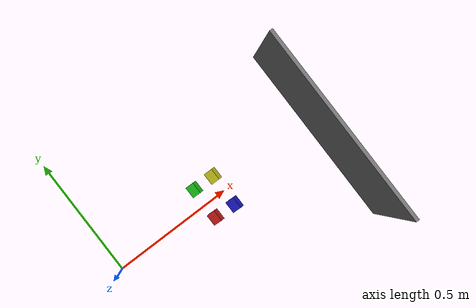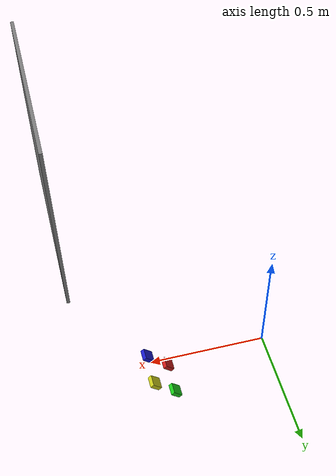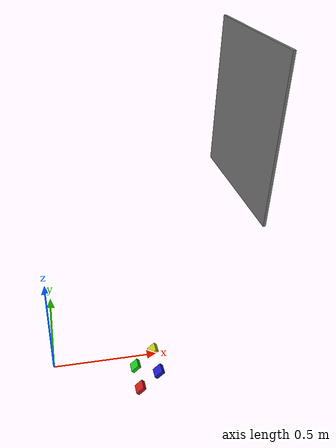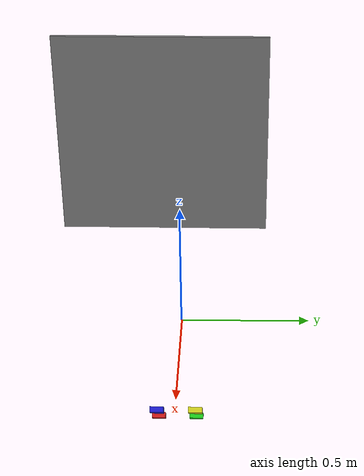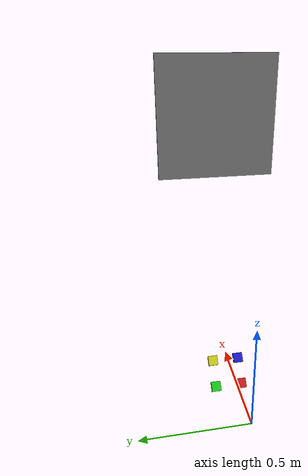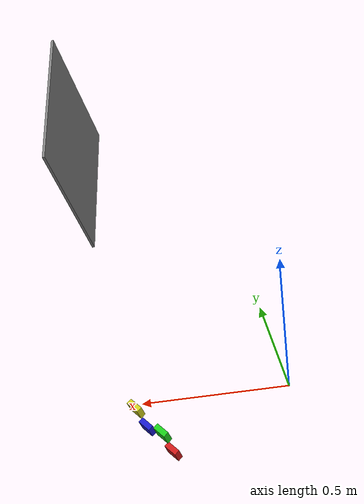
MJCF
<?xml version="1.0"?>
<mujoco>
    <compiler angle="radian"/>
    <option timestep="0.002"/>
    <size njmax="1000" nconmax="400"/>

    <default>
        <!-- Disable all default collision participation -->
        <geom contype="0" conaffinity="0"/>
        <site rgba="0.5 0.5 0.5 0.0"/>
    </default>

    <asset>
        <texture type="skybox" builtin="gradient" rgb1="1 1 1" rgb2="0.6 0.8 1" width="256" height="256"/>
    </asset>

    <worldbody>
        <light name="scene_directional_light" directional="true" castshadow="false" cutoff="4" exponent="20"
               diffuse="1 1 1" specular="0 0 0" pos=".9 .3 2.5"/>

        <body name="screen" pos="0.8 0.0 1.2" euler="0 0 0">
            <geom name="screen" type="box" size="0.005 0.3 0.3"/>
        </body>

        <body name="button-0" pos="0.41 -0.07 -0.15" euler="0 -0.79 0">
            <geom name="button-0" type="box" size="0.025 0.025 0.01" rgba="0.8 0.1 0.1 1.0"/>
            <site name="button-0" type="box" pos="0 0 0.01" size="0.02 0.02 0.01"/>
        </body>

        <body name="button-1" pos="0.41 0.07 -0.15" euler="0 -0.79 0">
            <geom name="button-1" type="box" size="0.025 0.025 0.01" rgba="0.1 0.8 0.1 1.0"/>
            <site name="button-1" type="box" pos="0 0 0.01" size="0.02 0.02 0.01"/>
        </body>

        <body name="button-2" pos="0.5 -0.07 -0.05" euler="0 -0.79 0">
            <geom name="button-2" type="box" size="0.025 0.025 0.01" rgba="0.1 0.1 0.8 1.0"/>
            <site name="button-2" type="box" pos="0 0 0.01" size="0.02 0.02 0.01"/>
        </body>

        <body name="button-3" pos="0.5 0.07 -0.05" euler="0 -0.79 0">
            <geom name="button-3" type="box" size="0.025 0.025 0.01" rgba="0.8 0.8 0.1 1.0"/>
            <site name="button-3" type="box" pos="0 0 0.01" size="0.02 0.02 0.01"/>
        </body>
    </worldbody>

    <sensor>
        <touch name="button-0" site="button-0"/>
        <touch name="button-1" site="button-1"/>
        <touch name="button-2" site="button-2"/>
        <touch name="button-3" site="button-3"/>
    </sensor>
</mujoco>
